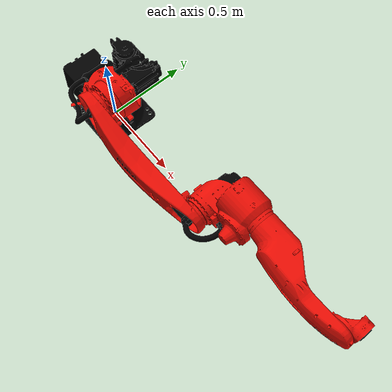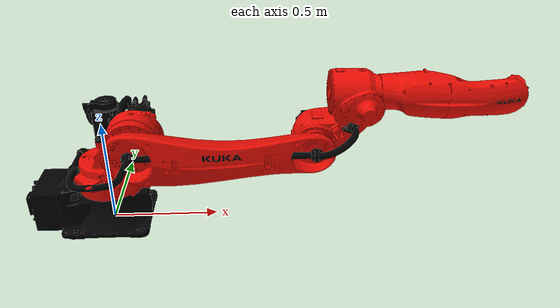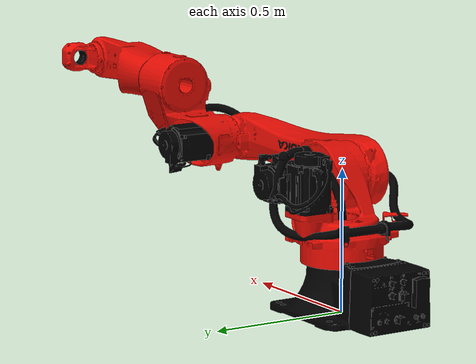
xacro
<?xml version="1.0" encoding="UTF-8"?>
<robot xmlns:xacro="http://www.ros.org/wiki/xacro" name="kr35_r1840_3_hw">
  <!-- Import urdf files  -->
  <xacro:include filename="$(find kuka_cybertech_support)/urdf/kr35_r1840_3_hw_macro.xacro"/>
  <xacro:include filename="$(find kuka_cybertech_support)/urdf/kr_cybertech_ros2_control_macro.xacro"/>
  <!-- Basic arguments  -->
  <xacro:arg name="prefix" default=""/>
  <xacro:arg name="x" default="0"/>
  <xacro:arg name="y" default="0"/>
  <xacro:arg name="z" default="0"/>
  <xacro:arg name="roll" default="0"/>
  <xacro:arg name="pitch" default="0"/>
  <xacro:arg name="yaw" default="0"/>
  <!-- kroshu-specific arguments -->
  <xacro:arg name="driver_version" default="rsi_only"/>
  <xacro:arg name="mode" default="hardware"/>
  <xacro:arg name="gpio_config" default=""/>
  <xacro:arg name="roundtrip_time" default="0"/>
  <xacro:arg name="client_ip" default="0.0.0.0"/>
  <xacro:arg name="client_port" default="59152"/>
  <xacro:arg name="mxa_client_port" default="1337"/>
  <xacro:arg name="controller_ip" default="0.0.0.0"/>
  <xacro:arg name="verify_robot_model" default="true"/>
  <xacro:arg name="rsi_xml_config_file" default=""/>
  <xacro:kuka_cybertech_ros2_control name="$(arg prefix)kr35_r1840_3_hw" driver_version="$(arg driver_version)" client_ip="$(arg client_ip)" client_port="$(arg client_port)" mxa_client_port="$(arg mxa_client_port)" controller_ip="$(arg controller_ip)" prefix="$(arg prefix)" mode="$(arg mode)" gpio_config="$(arg gpio_config)" roundtrip_time="$(arg roundtrip_time)" verify_robot_model="$(arg verify_robot_model)" rsi_xml_config_file="$(arg rsi_xml_config_file)">
    <ext_axes_ros2_control_joints/>
  </xacro:kuka_cybertech_ros2_control>
  <!-- world link -->
  <link name="world"/>
  <!-- robot links, joints -->
  <xacro:kuka_kr35_r1840_3_hw_robot prefix="$(arg prefix)" package_name="kuka_cybertech_support"/>
  <!-- default world - base_link joint -->
  <joint name="$(arg prefix)world-base_link" type="fixed">
    <parent link="world"/>
    <child link="$(arg prefix)base_link"/>
    <origin xyz="$(arg x) $(arg y) $(arg z)" rpy="$(arg roll) $(arg pitch) $(arg yaw)"/>
  </joint>
</robot>

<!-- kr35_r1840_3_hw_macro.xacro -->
<robot xmlns:xacro="http://www.ros.org/wiki/xacro" name="kr35_r1840_3_hw">
  <xacro:macro name="kuka_kr35_r1840_3_hw_robot" params="prefix package_name">
    <link name="${prefix}base"/>
    <link name="${prefix}base_link">
      <collision>
        <geometry>
          <mesh filename="package://${package_name}/meshes/kr35_r1840_3_hw/collision/base_link.stl"/>
        </geometry>
        <origin rpy="0.0 0.0 0.0" xyz="0.0 0.0 0.0"/>
      </collision>
      <inertial>
        <inertia ixx="0.826710070988791" ixy="0.0" ixz="0.0" iyy="1.0532984395003224" iyz="0.0" izz="1.067619390604537"/>
        <mass value="53.7647"/>
        <origin rpy="-0.11961611134062222 -0.42159909518503985 0.010576198109219125" xyz="-0.008719211676062546 6.228008340044944e-05 0.15051911477233204"/>
      </inertial>
      <visual>
        <geometry>
          <mesh filename="package://${package_name}/meshes/kr35_r1840_3_hw/visual/base_link.dae"/>
        </geometry>
        <origin rpy="0.0 0.0 0.0" xyz="0.0 0.0 0.0"/>
      </visual>
    </link>
    <link name="${prefix}flange"/>
    <link name="${prefix}link_1">
      <collision>
        <geometry>
          <mesh filename="package://${package_name}/meshes/kr35_r1840_3_hw/collision/link_1.stl"/>
        </geometry>
        <origin rpy="-3.141592653589793 0.0 -0.0" xyz="0.0 -3.230618256150718e-17 0.26380000000000003"/>
      </collision>
      <inertial>
        <inertia ixx="1.6293306035988533" ixy="0.0" ixz="0.0" iyy="1.48790696189089" iyz="0.0" izz="1.8648288850418433"/>
        <mass value="81.44930000000001"/>
        <origin rpy="0.8528954774650944 0.02231850440941273 -0.10893283726922436" xyz="0.071941040196785 -0.01648269643974841 -0.10450396463566905"/>
      </inertial>
      <visual>
        <geometry>
          <mesh filename="package://${package_name}/meshes/kr35_r1840_3_hw/visual/link_1.dae"/>
        </geometry>
        <origin rpy="-3.141592653589793 0.0 -0.0" xyz="0.0 -3.230618256150718e-17 0.26380000000000003"/>
      </visual>
    </link>
    <link name="${prefix}link_2">
      <collision>
        <geometry>
          <mesh filename="package://${package_name}/meshes/kr35_r1840_3_hw/collision/link_2.stl"/>
        </geometry>
        <origin rpy="1.5707963267948968 -0.0 1.5707963267948966" xyz="-0.4435 -0.14999999999999997 0.09350000000000006"/>
      </collision>
      <inertial>
        <inertia ixx="5.991676420190299" ixy="0.0" ixz="0.0" iyy="0.34656752938473534" iyz="0.0" izz="6.013413815236609"/>
        <mass value="53.727"/>
        <origin rpy="-2.939567654685964 -1.4413963147644149 1.372619729174395" xyz="0.3033584226738884 -0.0004796883689764923 -0.07022588261023321"/>
      </inertial>
      <visual>
        <geometry>
          <mesh filename="package://${package_name}/meshes/kr35_r1840_3_hw/visual/link_2.dae"/>
        </geometry>
        <origin rpy="1.5707963267948968 -0.0 1.5707963267948966" xyz="-0.4435 -0.14999999999999997 0.09350000000000006"/>
      </visual>
    </link>
    <link name="${prefix}link_3">
      <collision>
        <geometry>
          <mesh filename="package://${package_name}/meshes/kr35_r1840_3_hw/collision/link_3.stl"/>
        </geometry>
        <origin rpy="1.5707963267948968 -0.0 -0.0" xyz="-0.15000000000000005 1.2535 0.11600000000000006"/>
      </collision>
      <inertial>
        <inertia ixx="0.5924680810605814" ixy="0.0" ixz="0.0" iyy="0.46402433150527694" iyz="0.0" izz="0.7750079357706027"/>
        <mass value="33.3026"/>
        <origin rpy="0.22136112456657464 -0.14964841802997608 1.1505799825250325" xyz="0.11910403385921821 -0.0937917730147196 0.09124612120374985"/>
      </inertial>
      <visual>
        <geometry>
          <mesh filename="package://${package_name}/meshes/kr35_r1840_3_hw/visual/link_3.dae"/>
        </geometry>
        <origin rpy="1.5707963267948968 -0.0 -0.0" xyz="-0.15000000000000005 1.2535 0.11600000000000006"/>
      </visual>
    </link>
    <link name="${prefix}link_4">
      <collision>
        <geometry>
          <mesh filename="package://${package_name}/meshes/kr35_r1840_3_hw/collision/link_4.stl"/>
        </geometry>
        <origin rpy="1.8369701987210297e-16 1.5707963267948966 0.0" xyz="-1.4535 3.824168447746776e-17 0.44999999999999996"/>
      </collision>
      <inertial>
        <inertia ixx="0.0553573080051956" ixy="0.0" ixz="0.0" iyy="0.3143103119802837" iyz="0.0" izz="0.3247037705472359"/>
        <mass value="15.3552"/>
        <origin rpy="-3.100662238962031 -1.37804550206481 -1.5601621473383993" xyz="-0.0001406340523080129 -0.07527848872043343 -0.2901270623632385"/>
      </inertial>
      <visual>
        <geometry>
          <mesh filename="package://${package_name}/meshes/kr35_r1840_3_hw/visual/link_4.dae"/>
        </geometry>
        <origin rpy="1.8369701987210297e-16 1.5707963267948966 0.0" xyz="-1.4535 3.824168447746776e-17 0.44999999999999996"/>
      </visual>
    </link>
    <link name="${prefix}link_5">
      <collision>
        <geometry>
          <mesh filename="package://${package_name}/meshes/kr35_r1840_3_hw/collision/link_5.stl"/>
        </geometry>
        <origin rpy="1.5707963267948968 -3.749399456654644e-33 -6.123233995736766e-17" xyz="-1.0069000000000001 1.4535 0.053"/>
      </collision>
      <inertial>
        <inertia ixx="0.008465962641296088" ixy="0.0" ixz="0.0" iyy="0.011114663598543477" iyz="0.0" izz="0.012637373760160442"/>
        <mass value="4.59"/>
        <origin rpy="-0.012370262708191977 -0.8044745495411716 3.137481150262563" xyz="0.00677 -5e-05 -0.00714"/>
      </inertial>
      <visual>
        <geometry>
          <mesh filename="package://${package_name}/meshes/kr35_r1840_3_hw/visual/link_5.dae"/>
        </geometry>
        <origin rpy="1.5707963267948968 -3.749399456654644e-33 -6.123233995736766e-17" xyz="-1.0069000000000001 1.4535 0.053"/>
      </visual>
    </link>
    <link name="${prefix}link_6">
      <collision>
        <geometry>
          <mesh filename="package://${package_name}/meshes/kr35_r1840_3_hw/collision/link_6.stl"/>
        </geometry>
        <origin rpy="1.2246467991473532e-16 1.5707963267948966 0.0" xyz="-1.4535000000000002 -6.025770166499968e-17 1.0583999999999998"/>
      </collision>
      <inertial>
        <inertia ixx="0.0013290018473702423" ixy="0.0" ixz="0.0" iyy="0.0012389981009168214" iyz="0.0" izz="0.002280000051712937"/>
        <mass value="1.24"/>
        <origin rpy="0.00017352122784772007 0.00014634993607144222 -1.5662406035670715" xyz="-1e-05 -1e-05 -0.0197"/>
      </inertial>
      <visual>
        <geometry>
          <mesh filename="package://${package_name}/meshes/kr35_r1840_3_hw/visual/link_6.dae"/>
        </geometry>
        <origin rpy="1.2246467991473532e-16 1.5707963267948966 0.0" xyz="-1.4535000000000002 -6.025770166499968e-17 1.0583999999999998"/>
      </visual>
    </link>
    <link name="${prefix}tool0"/>
    <joint name="${prefix}base_link-base" type="fixed">
      <child link="${prefix}base"/>
      <origin rpy="0.0 0.0 0.0" xyz="0.0 0.0 0.0"/>
      <parent link="${prefix}base_link"/>
    </joint>
    <joint name="${prefix}joint_1" type="revolute">
      <axis xyz="0.0 0.0 1.0"/>
      <child link="${prefix}link_1"/>
      <limit effort="1920.0" lower="-3.2288591161895095" upper="3.2288591161895095" velocity="3.141592653589793"/>
      <origin rpy="3.141592653589793 0.0 0.0" xyz="0.0 0.0 0.26380000000000003"/>
      <parent link="${prefix}base_link"/>
    </joint>
    <joint name="${prefix}joint_2" type="revolute">
      <axis xyz="0.0 0.0 1.0"/>
      <child link="${prefix}link_2"/>
      <limit effort="1721.0002677925002" lower="-3.2288591161895095" upper="1.1344640137963142" velocity="3.141592653589793"/>
      <origin rpy="1.5707963267948966 0.0 0.0" xyz="0.15 0.0935 -0.1797"/>
      <parent link="${prefix}link_1"/>
    </joint>
    <joint name="${prefix}joint_3" type="revolute">
      <axis xyz="0.0 0.0 1.0"/>
      <child link="${prefix}link_3"/>
      <limit effort="692.79380081545" lower="-2.0943951023931953" upper="3.1066860685499065" velocity="3.490658503988659"/>
      <origin rpy="0.0 0.0 0.0" xyz="0.81 0.0 -0.0225"/>
      <parent link="${prefix}link_2"/>
    </joint>
    <joint name="${prefix}joint_4" type="revolute">
      <axis xyz="0.0 0.0 1.0"/>
      <child link="${prefix}link_4"/>
      <limit effort="134.25883505388012" lower="-3.141592653589793" upper="3.141592653589793" velocity="6.981317007977318"/>
      <origin rpy="1.5707963267948966 0.0 -1.5707963267948966" xyz="0.3 -0.2 0.116"/>
      <parent link="${prefix}link_3"/>
    </joint>
    <joint name="${prefix}joint_5" type="revolute">
      <axis xyz="0.0 0.0 1.0"/>
      <child link="${prefix}link_5"/>
      <limit effort="152.7211182188344" lower="-3.141592653589793" upper="3.141592653589793" velocity="6.806784082777885"/>
      <origin rpy="0.0 1.5707963267948966 1.5707963267948966" xyz="0.0 -0.053 -0.5569"/>
      <parent link="${prefix}link_4"/>
    </joint>
    <joint name="${prefix}joint_6" type="revolute">
      <axis xyz="0.0 0.0 1.0"/>
      <child link="${prefix}link_6"/>
      <limit effort="68.63937567127184" lower="-6.2482787221397" upper="6.2482787221397" velocity="7.3303828583761845"/>
      <origin rpy="1.5707963267948966 0.0 -1.5707963267948966" xyz="0.0515 0.0 0.053"/>
      <parent link="${prefix}link_5"/>
    </joint>
    <joint name="${prefix}link_6-flange" type="fixed">
      <child link="${prefix}flange"/>
      <origin rpy="0.0 1.5707963267948966 0.0" xyz="0.0 0.0 -0.0385"/>
      <parent link="${prefix}link_6"/>
    </joint>
    <joint name="${prefix}link_6-tool0" type="fixed">
      <child link="${prefix}tool0"/>
      <origin rpy="3.141592653589793 0.0 3.141592653589793" xyz="0.0 0.0 -0.0385"/>
      <parent link="${prefix}link_6"/>
    </joint>
  </xacro:macro>
</robot>
